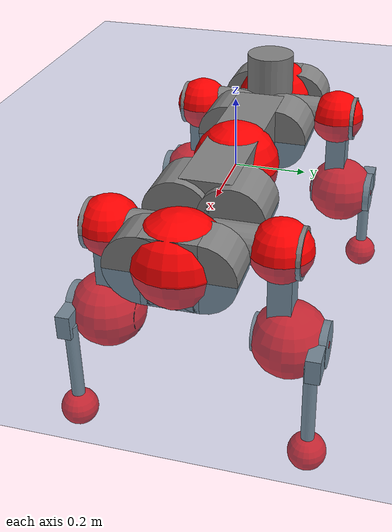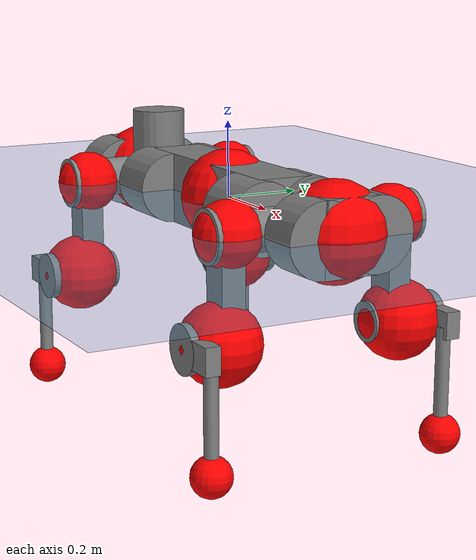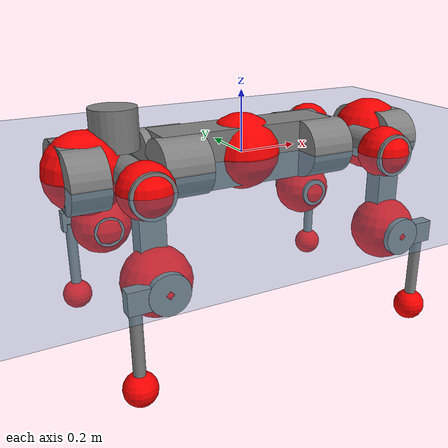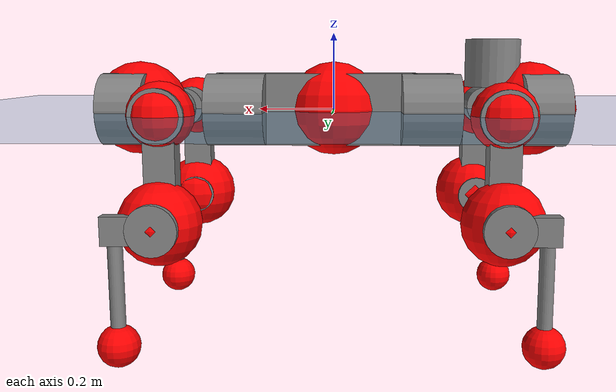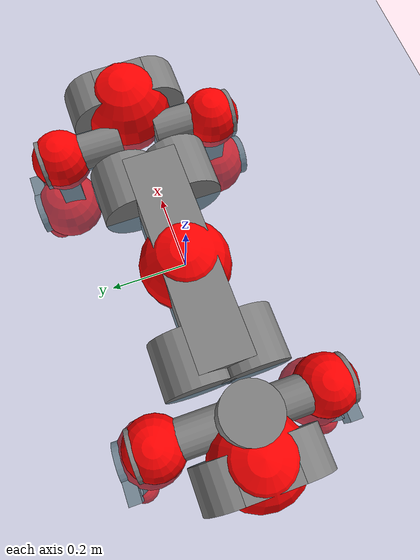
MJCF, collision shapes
<mujoco model="anymal_c">
  <compiler angle="radian" assetdir="assets" balanceinertia="true" inertiafromgeom="false"/>

  <option timestep="0.005" density="1.2" viscosity="2e-05"/>

  <size nkey="1"/>

  <visual>
    <quality shadowsize="8192"/>
    <map shadowclip="0.5"/>
  </visual>

  <default>
    <default class="/">
      <material specular="0" shininess="0.25"/>
      <geom contype="0" conaffinity="0" group="1" solref="-1000 -80"/>
      <site size="0.01 0.005 0.005" group="5"/>
      <general forcelimited="true" forcerange="-80 80" biastype="affine" gainprm="80" biasprm="0 -80 -2"/>
      <default class="anymal_c">
        <joint armature="0.01" damping="0.01" frictionloss="0.1"/>
        <default class="visual">
          <geom type="mesh" group="2"/>
          <default class="visual_zflip"/>
        </default>
        <default class="collision">
          <geom type="cylinder" group="3"/>
          <default class="foot">
            <geom size="0.03 0 0" type="sphere" condim="6" priority="1" friction="0.8 0.02 0.01" solimp="0.015 1 0.03"/>
          </default>
        </default>
      </default>
      <default class="reward_collision_sphere">
        <geom group="5" rgba="1 0 0 1"/>
      </default>
    </default>
  </default>

  <asset>
    <texture type="skybox" colorspace="auto" name="//unnamed_texture_0" builtin="gradient" rgb1="0.95 0.95 0.95" rgb2="0.95 0.95 0.95" width="100" height="600"/>
    <texture type="2d" colorspace="auto" name="texplane" builtin="checker" rgb1="0.345 0.575 0.748" rgb2="0.345 0.575 0.748" markrgb="1 1 1" width="512" height="512"/>
    <texture type="2d" colorspace="linear" name="base" file="base.png"/>
    <texture type="2d" colorspace="linear" name="top_shell" file="top_shell.png"/>
    <texture type="2d" colorspace="linear" name="bottom_shell" file="bottom_shell.png"/>
    <texture type="2d" colorspace="linear" name="remote" file="remote.png"/>
    <texture type="2d" colorspace="linear" name="hatch" file="hatch.png"/>
    <texture type="2d" colorspace="linear" name="handle" file="handle.png"/>
    <texture type="2d" colorspace="linear" name="face" file="face.png"/>
    <texture type="2d" colorspace="linear" name="battery" file="battery.png"/>
    <texture type="2d" colorspace="linear" name="lidar_cage" file="lidar_cage.png"/>
    <texture type="2d" colorspace="linear" name="depth_camera" file="depth_camera.png"/>
    <texture type="2d" colorspace="linear" name="wide_angle_camera" file="wide_angle_camera.png"/>
    <texture type="2d" colorspace="linear" name="lidar" file="lidar.png"/>
    <texture type="2d" colorspace="linear" name="drive" file="drive.png"/>
    <texture type="2d" colorspace="linear" name="hip_l" file="hip_l.png"/>
    <texture type="2d" colorspace="linear" name="shank_l" file="shank_l.png"/>
    <texture type="2d" colorspace="linear" name="foot" file="foot.png"/>
    <texture type="2d" colorspace="linear" name="thigh" file="thigh.png"/>
    <texture type="2d" colorspace="linear" name="shank_r" file="shank_r.png"/>
    <texture type="2d" colorspace="linear" name="hip_r" file="hip_r.png"/>
    <material name="MatPlane" class="/" texture="texplane" texuniform="true" texrepeat="2 2" specular="0.9" shininess="0.5"/>
    <material name="black_plastic" class="/" rgba="0.007 0.007 0.007 1"/>
    <material name="green" class="/" rgba="0.052 0.178 0.033 1"/>
    <material name="red" class="/" rgba="0.178 0.006 0.005 1"/>
    <material name="yellow" class="/" rgba="0.178 0.119 0.006 1"/>
    <material name="lwl" class="/" rgba="0.8 0.8 0.8 1"/>
    <material name="base" class="/" texture="base"/>
    <material name="top_shell" class="/" texture="top_shell"/>
    <material name="bottom_shell" class="/" texture="bottom_shell"/>
    <material name="hip_l" class="/" texture="hip_l"/>
    <material name="thigh" class="/" texture="thigh"/>
    <material name="shank_l" class="/" texture="shank_l"/>
    <material name="foot" class="/" texture="foot"/>
    <material name="hip_r" class="/" texture="hip_r"/>
    <material name="shank" class="/" texture="shank_r"/>
    <material name="hatch" class="/" texture="hatch"/>
    <material name="remote" class="/" texture="remote"/>
    <material name="handle" class="/" texture="handle"/>
    <material name="face" class="/" texture="face"/>
    <material name="depth_camera" class="/" texture="depth_camera"/>
    <material name="wide_angle_camera" class="/" texture="wide_angle_camera"/>
    <material name="battery" class="/" texture="battery"/>
    <material name="lidar_cage" class="/" texture="lidar_cage"/>
    <material name="lidar" class="/" texture="lidar"/>
    <material name="drive" class="/" texture="drive"/>
    <mesh name="base_0" class="/" file="base_0.obj"/>
    <mesh name="base_1" class="/" file="base_1.obj"/>
    <mesh name="base_2" class="/" file="base_2.obj"/>
    <mesh name="base_3" class="/" file="base_3.obj"/>
    <mesh name="base_4" class="/" file="base_4.obj"/>
    <mesh name="base_5" class="/" file="base_5.obj"/>
    <mesh name="top_shell" class="/" file="top_shell.obj"/>
    <mesh name="bottom_shell" class="/" file="bottom_shell.obj"/>
    <mesh name="remote" class="/" file="remote.obj"/>
    <mesh name="handle" class="/" file="handle.obj"/>
    <mesh name="face" class="/" file="face.obj"/>
    <mesh name="wide_angle_camera" class="/" file="wide_angle_camera.obj"/>
    <mesh name="depth_camera" class="/" file="depth_camera.obj"/>
    <mesh name="battery" class="/" file="battery.obj"/>
    <mesh name="lidar_cage" class="/" file="lidar_cage.obj"/>
    <mesh name="lidar" class="/" file="lidar.obj"/>
    <mesh name="drive" class="/" file="drive.obj"/>
    <mesh name="hip_l" class="/" file="hip_l.obj"/>
    <mesh name="thigh" class="/" file="thigh.obj"/>
    <mesh name="shank_l" class="/" file="shank_l.obj"/>
    <mesh name="foot" class="/" file="foot.obj"/>
    <mesh name="hip_r" class="/" file="hip_r.obj"/>
    <mesh name="hatch" class="/" file="hatch.obj"/>
    <mesh name="shank_r" class="/" file="shank_r.obj"/>
  </asset>

  <worldbody>
    <geom name="floor" class="/" size="100 100 0.125" type="plane" group="0" material="MatPlane"/>
    <light name="toplight_shadow" class="/" pos="0 0 5" dir="0.0990148 0.0990148 -0.990148" type="directional" ambient="0.04 0.04 0.04" diffuse="0.55 0.55 0.55" specular="0.12 0.12 0.12"/>
    <light name="toplight_fill" class="/" pos="0 0 5" dir="0.0990148 0.0990148 -0.990148" type="directional" castshadow="false" ambient="0.04 0.04 0.04" diffuse="0.3 0.3 0.3" specular="0.08 0.08 0.08"/>
    <body name="trunk" childclass="anymal_c" pos="-8.71527e-05 0.000206402 0.00273431" quat="1 -0.000144268 -0.000571201 0.000120425">
      <inertial pos="0.00447569 -0.00630738 0.0416147" quat="0.500415 0.500124 0.500041 0.49942" mass="21.8036" diaginertia="1.23034 0.803807 0.128943"/>
      <joint name="//unnamed_joint_0" type="free" armature="0" damping="0" frictionloss="0"/>
      <geom name="//unnamed_geom_1" class="visual" material="green" mesh="base_0"/>
      <geom name="//unnamed_geom_2" class="visual" material="yellow" mesh="base_1"/>
      <geom name="//unnamed_geom_3" class="visual" material="red" mesh="base_2"/>
      <geom name="//unnamed_geom_4" class="visual" material="black_plastic" mesh="base_3"/>
      <geom name="//unnamed_geom_5" class="visual" material="lwl" mesh="base_4"/>
      <geom name="//unnamed_geom_6" class="visual" material="base" mesh="base_5"/>
      <geom name="trunk_1" class="collision" size="0.299964 0.0724052 0.0930924" type="box"/>
      <geom name="trunk_2" class="collision" size="0.0930924 0.0749911" pos="0.250889 0.0732224 0" quat="0.707107 0 0.707107 0"/>
      <geom name="trunk_3" class="collision" size="0.0930924 0.0749911" pos="-0.250889 0.0732224 0" quat="0.707107 0 0.707107 0"/>
      <geom name="trunk_4" class="collision" size="0.0930924 0.0749911" pos="0.250889 -0.0732224 0" quat="0.707107 0 0.707107 0"/>
      <geom name="trunk_5" class="collision" size="0.0930924 0.0749911" pos="-0.250889 -0.0732224 0" quat="0.707107 0 0.707107 0"/>
      <geom name="//unnamed_geom_12" class="visual" material="top_shell" mesh="top_shell"/>
      <geom name="//unnamed_geom_13" class="visual" material="bottom_shell" mesh="bottom_shell"/>
      <geom name="//unnamed_geom_14" class="visual" material="remote" mesh="remote"/>
      <geom name="//unnamed_geom_15" class="visual" material="handle" mesh="handle"/>
      <geom name="//unnamed_geom_16" class="visual" pos="0.478132 0 0" quat="1 0 0 0" material="face" mesh="face"/>
      <geom name="trunk_6" class="collision" size="0.0568898 0.0724052 0.0930924" pos="0.541575 0 0" type="box"/>
      <geom name="//unnamed_geom_18" class="collision" size="0.0930924 0.0568898" pos="0.541575 0.0732224 0" quat="0.707107 0 0.707107 0"/>
      <geom name="//unnamed_geom_19" class="collision" size="0.0930924 0.0568898" pos="0.541575 -0.0732224 0" quat="0.707107 0 0.707107 0"/>
      <geom name="//unnamed_geom_20" class="visual" pos="0.532509 0 -0.0244832" quat="0.965926 0 0.258819 0" material="depth_camera" mesh="depth_camera"/>
      <geom name="//unnamed_geom_21" class="visual" pos="0.591753 0 0.0135259" material="wide_angle_camera" mesh="wide_angle_camera"/>
      <geom name="//unnamed_geom_22" class="visual_zflip" pos="-0.478132 0 0" quat="0 0 0 1" material="face" mesh="face"/>
      <geom name="trunk_7" class="collision" size="0.0568898 0.0724052 0.0930924" pos="-0.541575 0 0" quat="0 0 0 1" type="box"/>
      <geom name="//unnamed_geom_24" class="collision" size="0.0930924 0.0568898" pos="-0.541575 -0.0732224 0" quat="0 -0.707107 0 0.707107"/>
      <geom name="//unnamed_geom_25" class="collision" size="0.0930924 0.0568898" pos="-0.541575 0.0732224 0" quat="0 -0.707107 0 0.707107"/>
      <geom name="//unnamed_geom_26" class="visual" pos="-0.532509 0 -0.0244832" quat="0 -0.258819 0 0.965926" material="depth_camera" mesh="depth_camera"/>
      <geom name="//unnamed_geom_27" class="visual_zflip" pos="-0.591753 0 0.0135259" quat="0 0 0 1" material="wide_angle_camera" mesh="wide_angle_camera"/>
      <geom name="//unnamed_geom_28" class="visual" material="battery" mesh="battery"/>
      <geom name="//unnamed_geom_29" class="visual" pos="0 0.078559 0.0281474" quat="0.683013 -0.183013 0.183013 0.683013" material="depth_camera" mesh="depth_camera"/>
      <geom name="//unnamed_geom_30" class="visual" pos="0 -0.078559 0.0281474" quat="0.683013 0.183013 0.183013 -0.683013" material="depth_camera" mesh="depth_camera"/>
      <geom name="//unnamed_geom_31" class="visual" pos="-0.419879 0 0.0664095" quat="1 0 0 0" material="lidar_cage" mesh="lidar_cage"/>
      <geom name="trunk_8" class="collision" size="0.0724052 0.0620616" pos="-0.419879 0 0.120621"/>
      <geom name="//unnamed_geom_33" class="visual" pos="-0.419879 -4.22259e-05 0.128482" quat="0.707107 0 0 -0.707107" material="lidar" mesh="lidar"/>
      <geom name="//unnamed_geom_34" class="visual" pos="0.345939 0.108737 2.45819e-09" quat="0.258819 0.965926 0 0" material="drive" mesh="drive"/>
      <geom name="//unnamed_geom_35" class="visual" pos="0.345939 -0.108737 -2.45819e-09" quat="0.258819 -0.965926 0 0" material="drive" mesh="drive"/>
      <geom name="//unnamed_geom_36" class="visual" pos="-0.345939 0.108737 -2.45819e-09" quat="0 0 0.965926 -0.258819" material="drive" mesh="drive"/>
      <geom name="//unnamed_geom_37" class="visual" pos="-0.345939 -0.108737 2.45819e-09" quat="0 0 -0.965926 -0.258819" material="drive" mesh="drive"/>
      <geom name="//unnamed_geom_38" class="visual" pos="0.133808 0 0.0659578" quat="1 0 0 0" material="hatch" mesh="hatch"/>
      <geom name="//unnamed_geom_39" class="reward_collision_sphere" size="0.124123"/>
      <geom name="//unnamed_geom_40" class="reward_collision_sphere" size="0.124123" pos="0.519081 0 0"/>
      <geom name="//unnamed_geom_41" class="reward_collision_sphere" size="0.124123" pos="-0.519081 0 0"/>
      <site name="imu" pos="0.292089 0.013487 0.0456123" size="0.0103436"/>
      <camera name="track" pos="0 -2.09207 0" quat="0.707107 0.707107 0 0" mode="trackcom"/>
      <camera name="ego_camera" pos="0.519081 0 -0.0361412" quat="-0.5 -0.5 0.5 0.5"/>
      <body name="LF_HIP" pos="0.345452 0.110581 0.00247488" quat="0.259135 0.965841 0.000104594 -0.000833459">
        <inertial pos="0.0701475 -0.0166952 -0.00677163" quat="-0.124673 0.705441 -0.127845 0.685905" mass="2.95533" diaginertia="0.0117906 0.00610308 0.00191623"/>
        <joint name="LF_HAA" pos="0 0 0" axis="0.999985 0.000938474 0.00537874" range="-0.723535 0.475826" armature="0.0094558" damping="0.00347323" frictionloss="0.125782"/>
        <geom name="//unnamed_geom_42" class="visual" pos="0 0.000144604 -2.37512e-05" quat="0.258819 -0.965926 0 0" material="hip_l" mesh="hip_l"/>
        <geom name="//unnamed_geom_43" class="visual" pos="0.0690955 -0.0822581 -0.0464377" quat="0.183013 -0.683013 0.683013 0.183013" material="drive" mesh="drive"/>
        <geom name="//unnamed_geom_44" class="collision" size="0.051718 0.0724052" pos="0.0690955 -0.0125104 -0.00623888" quat="-0.353553 -0.612372 0.612372 -0.353553"/>
        <body name="LF_THIGH" pos="0.0698516 -0.0785691 -0.0380416" quat="0.183435 -0.682666 0.683137 0.18342">
          <inertial pos="0.0347071 0.000304322 -0.221139" quat="0.993247 -0.00189236 -0.0848472 0.079101" mass="3.70055" diaginertia="0.0608217 0.0380618 0.0029183"/>
          <joint name="LF_HFE" pos="0 0 0" axis="1 0.00058255 6.85086e-05" range="-3.09927 3.14377" armature="0.0110682" damping="0.00960634" frictionloss="0.114664"/>
          <geom name="//unnamed_geom_45" class="visual" pos="0.00213843 3.36966e-06 0" quat="0.707107 0 0 -0.707107" material="thigh" mesh="thigh"/>
          <geom name="//unnamed_geom_46" class="collision" size="0.0672334 0.0413744" pos="0.0461406 0 0" quat="0.5 0.5 -0.5 -0.5"/>
          <geom name="//unnamed_geom_47" class="collision" size="0.0387885 0.0310308 0.14617" pos="0.0346054 0 -0.127682" quat="0.707107 0 0 -0.707107" type="box"/>
          <geom name="//unnamed_geom_48" class="visual" pos="0.115697 0 -0.257506" quat="1 0 0 0" material="drive" mesh="drive"/>
          <geom name="//unnamed_geom_49" class="collision" size="0.051718 0.0724052" pos="0.0349515 0 -0.257506" quat="0.707107 0 0.707107 0"/>
          <geom name="//unnamed_geom_50" class="reward_collision_sphere" size="0.0827488" pos="0.0288378 0 0"/>
          <body name="LF_SHANK" pos="0.115596 -0.0025244 -0.260771" quat="0.999996 0.000957808 -0.000161797 0.00274319">
            <inertial pos="0.00442527 -0.0638602 -0.0722887" quat="0.992926 -0.115906 -0.001632 -0.0257071" mass="0.669565" diaginertia="0.0206575 0.0120032 0.000717097"/>
            <joint name="LF_KFE" pos="0 0 0" axis="0.999967 0.00810088 -0.000629303" range="-3.09488 3.09622" armature="0.0103526" damping="0" frictionloss="0.117715"/>
            <geom name="//unnamed_geom_51" class="visual" pos="0.000697294 0.00371801 0" quat="0.707107 0 0 -0.707107" material="shank_l" mesh="shank_l"/>
            <geom name="LF_kfe_act" class="collision" size="0.0620616 0.0206872" pos="0.0230703 0 0" quat="0.5 0.5 -0.5 -0.5"/>
            <geom name="//unnamed_geom_53" class="collision" size="0.0594746 0.0349096 0.0196528" pos="0.0230703 -0.0601459 0" quat="0.5 0.5 -0.5 -0.5" type="box"/>
            <geom name="//unnamed_geom_54" class="visual" pos="0.0150532 -0.0908005 -0.305366" quat="0.382683 0 0 -0.92388" material="foot" mesh="foot"/>
            <geom name="LF_calf" class="collision" size="0.0181013 0.146105" pos="0.0150534 -0.0919987 -0.152683" quat="0.707107 0 0 -0.707107"/>
            <geom name="LF_foot" class="foot" size="0.0264314" pos="0.0150534 -0.0919987 -0.285037" quat="0.707107 0 0 -0.707107"/>
            <geom name="//unnamed_geom_57" class="reward_collision_sphere" size="0.103436" pos="-0.0576757 0 0"/>
            <geom name="//unnamed_geom_58" class="reward_collision_sphere" size="0.051718" pos="0.0150534 -0.0919987 -0.285037"/>
            <site name="LF_foot" class="foot" pos="0.0150534 -0.0919987 -0.285037" quat="0.707107 0 0 -0.707107" size="0.0103436"/>
          </body>
        </body>
      </body>
      <body name="RF_HIP" pos="0.34719 -0.107308 -8.5028e-05" quat="0.259493 -0.965743 -0.00176924 -0.00074842">
        <inertial pos="0.0657619 0.0186518 -0.00982718" quat="0.135886 0.678697 0.12752 0.710383" mass="3.33825" diaginertia="0.0124553 0.00660415 0.00196968"/>
        <joint name="RF_HAA" pos="0 0 0" axis="1 -0.000339773 0.000165643" range="-0.561344 0.834507" armature="0.00996284" damping="0.0170622" frictionloss="0.113254"/>
        <geom name="//unnamed_geom_59" class="visual" pos="0 -0.000144603 -2.37511e-05" quat="0.258819 0.965926 0 0" material="hip_r" mesh="hip_r"/>
        <geom name="//unnamed_geom_60" class="visual" pos="0.0690955 0.0822581 -0.0464377" quat="0.183013 0.683013 0.683013 -0.183013" material="drive" mesh="drive"/>
        <geom name="//unnamed_geom_61" class="collision" size="0.051718 0.0724052" pos="0.0690955 0.0125104 -0.00623888" quat="-0.353553 0.612372 0.612372 0.353553"/>
        <body name="RF_THIGH" pos="0.0620086 0.0747153 -0.0370732" quat="0.183427 0.682819 0.683294 -0.182269">
          <inertial pos="0.0367593 -0.00233174 -0.221755" quat="0.992629 -0.00538643 -0.0824341 0.0886701" mass="3.10022" diaginertia="0.0601206 0.0338833 0.00234749"/>
          <joint name="RF_HFE" pos="0 0 0" axis="0.999539 -0.00173595 -0.0303032" stiffness="0.00485272" range="-3.29219 3.25508" armature="0.0108027" damping="0.0262177" frictionloss="0.0934262"/>
          <geom name="//unnamed_geom_62" class="visual" pos="0.00213843 3.36966e-06 0" quat="0.707107 0 0 -0.707107" material="thigh" mesh="thigh"/>
          <geom name="//unnamed_geom_63" class="collision" size="0.0672334 0.0413744" pos="0.0461406 0 0" quat="0.5 0.5 0.5 0.5"/>
          <geom name="//unnamed_geom_64" class="collision" size="0.0387885 0.0310308 0.14617" pos="0.0346054 0 -0.127682" quat="0.707107 0 0 0.707107" type="box"/>
          <geom name="//unnamed_geom_65" class="visual" pos="0.115697 0 -0.257506" quat="1 0 0 0" material="drive" mesh="drive"/>
          <geom name="//unnamed_geom_66" class="collision" size="0.051718 0.0724052" pos="0.0349515 0 -0.257506" quat="0.707107 0 0.707107 0"/>
          <geom name="//unnamed_geom_67" class="reward_collision_sphere" size="0.0827488" pos="0.0288378 0 0"/>
          <body name="RF_SHANK" pos="0.109545 0.00236461 -0.258231" quat="0.999999 -0.000454541 0.00077507 0.000547564">
            <inertial pos="0.00571174 0.0621396 -0.0797876" quat="0.993777 0.108459 -0.0013798 0.0253381" mass="0.712059" diaginertia="0.0202894 0.0113576 0.000662061"/>
            <joint name="RF_KFE" pos="0 0 0" axis="0.999251 0.028805 -0.02585" range="-3.10694 3.22546" armature="0.0100297" damping="0.0206709" frictionloss="0.142827"/>
            <geom name="//unnamed_geom_68" class="visual" pos="0.00069729 -0.003718 0" quat="0.707107 0 0 0.707107" material="shank" mesh="shank_r"/>
            <geom name="RF_kfe_act" class="collision" size="0.0620616 0.0206872" pos="0.0230703 0 0" quat="0.5 0.5 0.5 0.5"/>
            <geom name="//unnamed_geom_70" class="collision" size="0.0594746 0.0349096 0.0196528" pos="0.0230703 0.0601459 0" quat="0.5 0.5 0.5 0.5" type="box"/>
            <geom name="//unnamed_geom_71" class="visual" pos="0.0150535 0.0908005 -0.305366" quat="0.382683 0 0 0.92388" material="foot" mesh="foot"/>
            <geom name="RF_calf" class="collision" size="0.0181013 0.146105" pos="0.0150534 0.0919987 -0.152683" quat="0.707107 0 0 0.707107"/>
            <geom name="RF_foot" class="foot" size="0.0317454" pos="0.0150534 0.0919987 -0.285037" quat="0.707107 0 0 0.707107"/>
            <geom name="//unnamed_geom_74" class="reward_collision_sphere" size="0.103436" pos="-0.0576757 0 0"/>
            <geom name="//unnamed_geom_75" class="reward_collision_sphere" size="0.051718" pos="0.0150534 0.0919987 -0.285037"/>
            <site name="RF_foot" class="foot" pos="0.0150534 0.0919987 -0.285037" quat="0.707107 0 0 0.707107" size="0.0103436"/>
          </body>
        </body>
      </body>
      <body name="LH_HIP" pos="-0.347509 0.105823 0.00194368" quat="-0.000842636 0.000369574 0.966006 -0.258518">
        <inertial pos="0.0658949 0.0204753 -0.00533604" quat="0.143875 0.650111 0.145261 0.731817" mass="3.3799" diaginertia="0.0121209 0.00599956 0.0019782"/>
        <joint name="LH_HAA" pos="0 0 0" axis="0.999898 -0.0142429 -0.000403599" stiffness="0.0166418" range="-0.453292 0.72811" armature="0.0099514" damping="0.0168214" frictionloss="0.100275"/>
        <geom name="//unnamed_geom_76" class="visual" pos="0 -0.000144603 -2.37511e-05" quat="-0.258819 -0.965926 0 0" material="hip_r" mesh="hip_r"/>
        <geom name="//unnamed_geom_77" class="visual" pos="0.0690955 0.0822581 -0.0464377" quat="0.183013 0.683013 0.683013 -0.183013" material="drive" mesh="drive"/>
        <geom name="//unnamed_geom_78" class="collision" size="0.051718 0.0724052" pos="0.0690955 0.0125104 -0.00623888" quat="-0.353553 0.612372 0.612372 0.353553"/>
        <body name="LH_THIGH" pos="0.0681961 0.0805603 -0.0370043" quat="0.182949 0.682828 0.683258 -0.182851">
          <inertial pos="0.0345087 0.00262938 -0.222006" quat="0.992419 -0.00417202 -0.0825828 0.0909191" mass="3.30291" diaginertia="0.0556262 0.0351008 0.00232264"/>
          <joint name="LH_HFE" pos="0 0 0" axis="0.999996 0.00189083 -0.00215624" range="-3.12956 3.13137" armature="0.0104433" damping="0.00174325" frictionloss="0.100828"/>
          <geom name="//unnamed_geom_79" class="visual" pos="0.00213843 3.36966e-06 0" quat="0.707107 0 0 -0.707107" material="thigh" mesh="thigh"/>
          <geom name="//unnamed_geom_80" class="collision" size="0.0672334 0.0413744" pos="0.0461406 0 0" quat="0.5 0.5 -0.5 -0.5"/>
          <geom name="//unnamed_geom_81" class="collision" size="0.0387885 0.0310308 0.14617" pos="0.0346054 0 -0.127682" quat="0.707107 0 0 -0.707107" type="box"/>
          <geom name="//unnamed_geom_82" class="visual" pos="0.115697 0 -0.257506" quat="1 0 0 0" material="drive" mesh="drive"/>
          <geom name="//unnamed_geom_83" class="collision" size="0.051718 0.0724052" pos="0.0349515 0 -0.257506" quat="0.707107 0 0.707107 0"/>
          <geom name="//unnamed_geom_84" class="reward_collision_sphere" size="0.0827488" pos="0.0288378 0 0"/>
          <body name="LH_SHANK" pos="0.112387 -0.000432389 -0.256849" quat="0.999998 0.000874435 0.000499245 -0.00183521">
            <inertial pos="0.00277257 0.0629238 -0.0705163" quat="0.992896 0.116086 -0.000455683 0.0260961" mass="0.621528" diaginertia="0.0183189 0.00965823 0.000543141"/>
            <joint name="LH_KFE" pos="0 0 0" axis="0.999962 -0.00862968 0.00114875" range="-3.12883 3.30502" armature="0.0108727" damping="0" frictionloss="0.101813"/>
            <geom name="//unnamed_geom_85" class="visual" pos="0.00069729 -0.003718 0" quat="-0.707107 0 0 -0.707107" material="shank" mesh="shank_r"/>
            <geom name="LH_kfe_act" class="collision" size="0.0620616 0.0206872" pos="0.0230703 0 0" quat="0.5 0.5 -0.5 -0.5"/>
            <geom name="//unnamed_geom_87" class="collision" size="0.0594746 0.0349096 0.0196528" pos="0.0230703 0.0601459 0" quat="0.5 0.5 -0.5 -0.5" type="box"/>
            <geom name="//unnamed_geom_88" class="visual" pos="0.0150535 0.0908005 -0.305366" quat="-0.382683 0 0 -0.92388" material="foot" mesh="foot"/>
            <geom name="LH_calf" class="collision" size="0.0181013 0.146105" pos="0.0150534 0.0919987 -0.152683" quat="0.707107 0 0 -0.707107"/>
            <geom name="LH_foot" class="foot" size="0.0385764" pos="0.0150534 0.0919987 -0.285037" quat="0.707107 0 0 -0.707107"/>
            <geom name="//unnamed_geom_91" class="reward_collision_sphere" size="0.103436" pos="-0.0576757 0 0"/>
            <geom name="//unnamed_geom_92" class="reward_collision_sphere" size="0.051718" pos="0.0150534 0.0919987 -0.285037"/>
            <site name="LH_foot" class="foot" pos="0.0150534 0.0919987 -0.285037" quat="0.707107 0 0 -0.707107" size="0.0103436"/>
          </body>
        </body>
      </body>
      <body name="RH_HIP" pos="-0.345752 -0.112577 0.00428732" quat="0.00053866 0.00207671 -0.965641 -0.259872">
        <inertial pos="0.0673745 -0.0164001 -0.00763497" quat="-0.0996671 0.705247 -0.159448 0.683571" mass="3.0917" diaginertia="0.0120088 0.00635158 0.00204738"/>
        <joint name="RH_HAA" pos="0 0 0" axis="0.999984 -0.00349362 0.00455273" range="-0.628089 0.529493" armature="0.0131464" damping="0.0146357" frictionloss="0.0943835"/>
        <geom name="//unnamed_geom_93" class="visual" pos="0 0.000144604 -2.37512e-05" quat="-0.258819 0.965926 0 0" material="hip_l" mesh="hip_l"/>
        <geom name="//unnamed_geom_94" class="visual" pos="0.0690955 -0.0822581 -0.0464377" quat="-0.183013 0.683013 -0.683013 -0.183013" material="drive" mesh="drive"/>
        <geom name="//unnamed_geom_95" class="collision" size="0.051718 0.0724052" pos="0.0690955 -0.0125104 -0.00623888" quat="0.353553 0.612372 -0.612372 0.353553"/>
        <body name="RH_THIGH" pos="0.0666888 -0.0750773 -0.0313939" quat="-0.182454 0.683313 -0.682865 -0.183002">
          <inertial pos="0.0358495 -0.00780773 -0.223122" quat="0.991265 0.00143987 -0.0852033 0.100657" mass="3.75981" diaginertia="0.0663438 0.0406269 0.00269166"/>
          <joint name="RH_HFE" pos="0 0 0" axis="0.999952 -0.000492902 0.00976219" range="-3.13332 3.25772" armature="0.00603192" damping="0.0045613" frictionloss="0.110267"/>
          <geom name="//unnamed_geom_96" class="visual" pos="0.00213843 3.36966e-06 0" quat="0.707107 0 0 -0.707107" material="thigh" mesh="thigh"/>
          <geom name="//unnamed_geom_97" class="collision" size="0.0672334 0.0413744" pos="0.0461406 0 0" quat="0.5 0.5 0.5 0.5"/>
          <geom name="//unnamed_geom_98" class="collision" size="0.0387885 0.0310308 0.14617" pos="0.0346054 0 -0.127682" quat="0.707107 0 0 0.707107" type="box"/>
          <geom name="//unnamed_geom_99" class="visual" pos="0.115697 0 -0.257506" quat="1 0 0 0" material="drive" mesh="drive"/>
          <geom name="//unnamed_geom_100" class="collision" size="0.051718 0.0724052" pos="0.0349515 0 -0.257506" quat="0.707107 0 0.707107 0"/>
          <geom name="//unnamed_geom_101" class="reward_collision_sphere" size="0.0827488" pos="0.0288378 0 0"/>
          <body name="RH_SHANK" pos="0.119007 0.00359592 -0.254487" quat="0.999999 0.00054936 -0.000761661 -0.00118973">
            <inertial pos="0.00589262 -0.0641896 -0.072308" quat="0.991291 -0.118026 -0.00186422 -0.0583886" mass="0.700147" diaginertia="0.0214479 0.0114401 0.000611421"/>
            <joint name="RH_KFE" pos="0 0 0" axis="0.999623 -0.0226541 -0.0155176" range="-3.21556 3.03585" armature="0.00960056" damping="0.0103472" frictionloss="0.115113"/>
            <geom name="//unnamed_geom_102" class="visual" pos="0.000697294 0.00371801 0" quat="0.707107 0 0 -0.707107" material="shank_l" mesh="shank_l"/>
            <geom name="RH_kfe_act" class="collision" size="0.0620616 0.0206872" pos="0.0230703 0 0" quat="0.5 0.5 0.5 0.5"/>
            <geom name="//unnamed_geom_104" class="collision" size="0.0594746 0.0349096 0.0196528" pos="0.0230703 -0.0601459 0" quat="0.5 0.5 0.5 0.5" type="box"/>
            <geom name="//unnamed_geom_105" class="visual" pos="0.0150532 -0.0908005 -0.305366" quat="0.382683 0 0 -0.92388" material="foot" mesh="foot"/>
            <geom name="RH_calf" class="collision" size="0.0181013 0.146105" pos="0.0150534 -0.0919987 -0.152683" quat="0.707107 0 0 0.707107"/>
            <geom name="RH_foot" class="foot" size="0.0399427" pos="0.0150534 -0.0919987 -0.285037" quat="0.707107 0 0 0.707107"/>
            <geom name="//unnamed_geom_108" class="reward_collision_sphere" size="0.103436" pos="-0.0576757 0 0"/>
            <geom name="//unnamed_geom_109" class="reward_collision_sphere" size="0.051718" pos="0.0150534 -0.0919987 -0.285037"/>
            <site name="RH_foot" class="foot" pos="0.0150534 -0.0919987 -0.285037" quat="0.707107 0 0 0.707107" size="0.0103436"/>
          </body>
        </body>
      </body>
    </body>
  </worldbody>

  <contact>
    <pair class="/" geom1="floor" geom2="LF_foot" name="//unnamed_contact_0"/>
    <pair class="/" geom1="floor" geom2="RF_foot" name="//unnamed_contact_1"/>
    <pair class="/" geom1="floor" geom2="LH_foot" name="//unnamed_contact_2"/>
    <pair class="/" geom1="floor" geom2="RH_foot" name="//unnamed_contact_3"/>
  </contact>

  <actuator>
    <general name="LF_HAA" class="/" joint="LF_HAA" forcerange="-86.0867 86.0867" gainprm="70.4602" biasprm="0 -70.4602 -2.07223"/>
    <general name="LF_HFE" class="/" joint="LF_HFE" forcerange="-106.041 106.041" gainprm="70.4602" biasprm="0 -70.4602 -2.07223"/>
    <general name="LF_KFE" class="/" joint="LF_KFE" forcerange="-88.0371 88.0371" gainprm="70.4602" biasprm="0 -70.4602 -2.07223"/>
    <general name="RF_HAA" class="/" joint="RF_HAA" forcerange="-78.7603 78.7603" gainprm="70.4602" biasprm="0 -70.4602 -2.07223"/>
    <general name="RF_HFE" class="/" joint="RF_HFE" forcerange="-86.2349 86.2349" gainprm="70.4602" biasprm="0 -70.4602 -2.07223"/>
    <general name="RF_KFE" class="/" joint="RF_KFE" forcerange="-83.113 83.113" gainprm="70.4602" biasprm="0 -70.4602 -2.07223"/>
    <general name="LH_HAA" class="/" joint="LH_HAA" forcerange="-76.1717 76.1717" gainprm="70.4602" biasprm="0 -70.4602 -2.07223"/>
    <general name="LH_HFE" class="/" joint="LH_HFE" forcerange="-83.5002 83.5002" gainprm="70.4602" biasprm="0 -70.4602 -2.07223"/>
    <general name="LH_KFE" class="/" joint="LH_KFE" forcerange="-84.9641 84.9641" gainprm="70.4602" biasprm="0 -70.4602 -2.07223"/>
    <general name="RH_HAA" class="/" joint="RH_HAA" forcerange="-105.316 105.316" gainprm="70.4602" biasprm="0 -70.4602 -2.07223"/>
    <general name="RH_HFE" class="/" joint="RH_HFE" forcerange="-76.5654 76.5654" gainprm="70.4602" biasprm="0 -70.4602 -2.07223"/>
    <general name="RH_KFE" class="/" joint="RH_KFE" forcerange="-76.8315 76.8315" gainprm="70.4602" biasprm="0 -70.4602 -2.07223"/>
  </actuator>

  <sensor>
    <gyro site="imu" name="imu_angular_velocity"/>
    <velocimeter site="imu" name="imu_linear_velocity"/>
    <framelinvel objtype="site" objname="LF_foot" name="LF_foot_global_linear_velocity"/>
    <framelinvel objtype="site" objname="RF_foot" name="RF_foot_global_linear_velocity"/>
    <framelinvel objtype="site" objname="LH_foot" name="LH_foot_global_linear_velocity"/>
    <framelinvel objtype="site" objname="RH_foot" name="RH_foot_global_linear_velocity"/>
  </sensor>

  <keyframe>
    <key name="home" qpos="0 0 0.55 1 0 0 0 0 0.4 -0.8 0 -0.4 0.8 0 -0.4 0.8 0 0.4 -0.8"/>
  </keyframe>
</mujoco>
